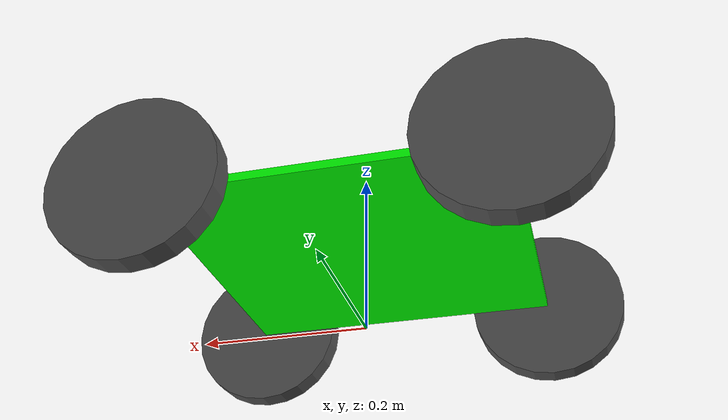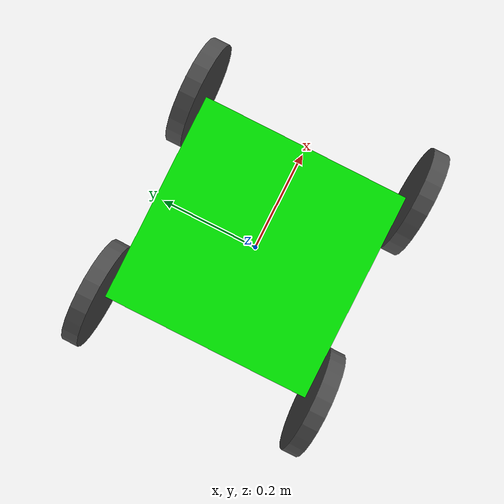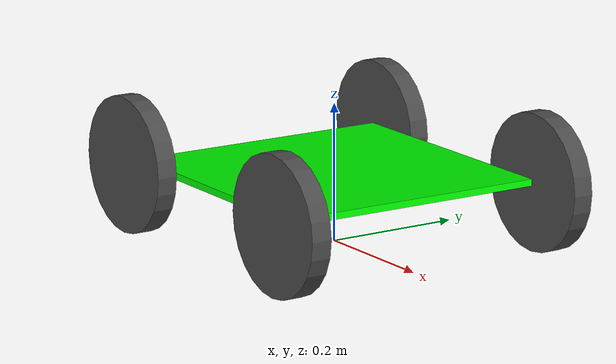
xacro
<robot name="test_robot"
  xmlns:xacro="http://ros.org/wiki/xacro">
  <xacro:property name="gcolor" value="0 1 0 2.0" />
  <xacro:property name="tire_width" value="0.03" />
  <xacro:property name="body_width" value="0.4" />
  <xacro:property name="body_height" value="0.4" />
  <xacro:property name="tire_height" value="0.1" />

  <xacro:include filename="tire.xacro" />

  <material name="green">
    <color rgba="${gcolor}" />
  </material>

  <link name="base_link">
    <origin xyz="0 0 ${tire_height}" rpy="0 0 0" />
  </link>

  <joint name="body_joint" type="fixed">
    <parent link="base_link" />
    <child link="body_link" />
    <origin xyz="0 0 ${tire_height}" rpy="0 0 0" />
  </joint>

  <link name="body_link">
    <visual>
      <geometry>
        <box size="0.4 0.4 0.01" />
      </geometry>
      <origin xyz="0 0 0" rpy="0 0 0" />
      <material name="green" />
    </visual>
    <inertial>
      <origin xyz="0 0 0" rpy="0 0 0" />
      <mass value="1.0" />
      <inertia ixx="0.001" ixy="0.0" ixz="0.0" iyy="0.001" iyz="0.0" izz="0.001" />
    </inertial>
    <collision>
      <origin xyz="0 0 0" rpy="0 0 0" />
      <geometry>
        <box size="0.4 0.4 0.01" />
      </geometry>
    </collision>
  </link>

  <gazebo reference="body_link">
    <material>
      Gazebo/Green
    </material>
  </gazebo>

  <xacro:make_tire suffix="tire0" parent="body_link" xyz="${body_width/2} ${body_height/2+tire_width/2} 0" rpy="0 1.57 -1.57" radius="${tire_height}" length="${tire_width}" />
  <xacro:make_tire suffix="tire1" parent="body_link" xyz="${-(body_width/2)} ${body_height/2+tire_width/2} 0" rpy="0 1.57 -1.57" radius="${tire_height}" length="${tire_width}" />
  <xacro:make_tire suffix="tire2" parent="body_link" xyz="${body_width/2} ${-(body_height/2+tire_width/2)} 0" rpy="0 1.57 1.57" radius="${tire_height}" length="${tire_width}" />
  <xacro:make_tire suffix="tire3" parent="body_link" xyz="${-(body_width/2)} ${-(body_height/2+tire_width/2)} 0" rpy="0 1.57 1.57" radius="${tire_height}" length="${tire_width}" />

</robot>

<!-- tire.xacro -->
<robot xmlns:xacro="http://ros.org/wiki/xacro">
  <xacro:macro name="make_tire" params="suffix parent xyz rpy radius length">
    <joint name="${suffix}_joint" type="continuous">
      <parent link="${parent}" />
      <child link="${suffix}_link" />
      <origin xyz="${xyz}" rpy="${rpy}" />
      <axis xyz="0 0 1" />
    </joint>

    <link name="${suffix}_link">
      <visual>
        <geometry>
          <cylinder radius="${radius}" length="${length}" />
        </geometry>
        <material name="gray">
          <color rgba="0.3 0.3 0.3 2.0" />
        </material>
        <origin xyz="0 0 0" rpy="0 0 0" />
      </visual>
      <inertial>
        <mass value="0.1" />
        <origin xyz="0 0 0" rpy="0 0 0" />
        <inertia ixx="0.0001" ixy="0.0" ixz="0.0" iyy="0.0001" iyz="0.0" izz="0.0001" />
      </inertial>
      <collision>
        <geometry>
          <cylinder radius="${radius}" length="${length}" />
        </geometry>
      </collision>
    </link>

    <gazebo reference="${suffix}_link">
      <material>
        Gazebo/Gray
      </material>
    </gazebo>
  </xacro:macro>

</robot>
